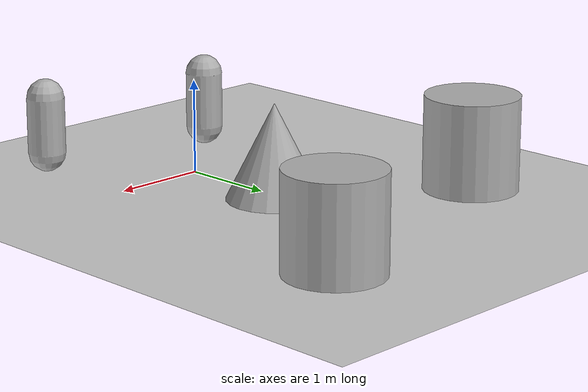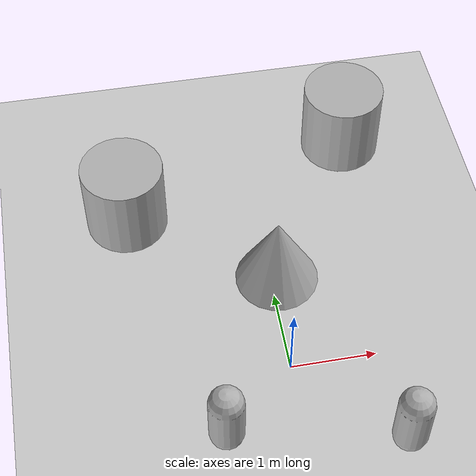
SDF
<sdf version='1.10'>
  <world name='empty'>
    <physics name='1ms' type='ignored'>
      <max_step_size>0.001</max_step_size>
      <real_time_factor>1</real_time_factor>
      <real_time_update_rate>1000</real_time_update_rate>
    </physics>
    <plugin
      filename="gz-sim-physics-system"
      name="gz::sim::systems::Physics">
    </plugin>
    <plugin
      filename="gz-sim-user-commands-system"
      name="gz::sim::systems::UserCommands">
    </plugin>
    <plugin
      filename="gz-sim-scene-broadcaster-system"
      name="gz::sim::systems::SceneBroadcaster">
    </plugin>
    <plugin
      filename="gz-sim-sensors-system"
      name="gz::sim::systems::Sensors">
      <render_engine>ogre2</render_engine>
    </plugin>
    <plugin
      filename="gz-sim-contact-system"
      name="gz::sim::systems::Contact">
    </plugin>
    <gravity>0 0 -9.8000000000000007</gravity>
    <magnetic_field>5.5644999999999998e-06 2.2875799999999999e-05 -4.2388400000000002e-05</magnetic_field>
    <atmosphere type='adiabatic'/>
    <scene>
      <ambient>0.400000006 0.400000006 0.400000006 1</ambient>
      <background>0.699999988 0.699999988 0.699999988 1</background>
      <shadows>true</shadows>
    </scene>
    <model name='ground_plane'>
      <static>true</static>
      <link name='link'>
        <collision name='collision'>
          <geometry>
            <plane>
              <normal>0 0 1</normal>
              <size>100 100</size>
            </plane>
          </geometry>
          <surface>
            <friction>
              <ode/>
            </friction>
            <bounce/>
            <contact/>
          </surface>
        </collision>
        <visual name='visual'>
          <geometry>
            <plane>
              <normal>0 0 1</normal>
              <size>100 100</size>
            </plane>
          </geometry>
          <material>
            <ambient>0.800000012 0.800000012 0.800000012 1</ambient>
            <diffuse>0.800000012 0.800000012 0.800000012 1</diffuse>
            <specular>0.800000012 0.800000012 0.800000012 1</specular>
          </material>
        </visual>
        <pose>0 0 0 0 0 0</pose>
        <inertial>
          <pose>0 0 0 0 0 0</pose>
          <mass>1</mass>
          <inertia>
            <ixx>1</ixx>
            <ixy>0</ixy>
            <ixz>0</ixz>
            <iyy>1</iyy>
            <iyz>0</iyz>
            <izz>1</izz>
          </inertia>
        </inertial>
        <enable_wind>false</enable_wind>
      </link>
      <pose>0 0 0 0 0 0</pose>
      <self_collide>false</self_collide>
    </model>
    <model name='cone'>
      <pose>0.083638254470768073 1.2736094310137573 0.49999999993296756 5.2544475711148228e-17 -7.713284103730715e-10 -2.7496961812708449e-22</pose>
      <link name='cone_link'>
        <inertial>
          <inertia>
            <ixx>0.074999999999999997</ixx>
            <ixy>0</ixy>
            <ixz>0</ixz>
            <iyy>0.074999999999999997</iyy>
            <iyz>0</iyz>
            <izz>0.074999999999999997</izz>
          </inertia>
          <mass>1</mass>
          <pose>0 0 0 0 0 0</pose>
        </inertial>
        <collision name='cone_collision'>
          <geometry>
            <cone>
              <radius>0.5</radius>
              <length>1</length>
            </cone>
          </geometry>
          <surface>
            <friction>
              <ode/>
            </friction>
            <bounce/>
            <contact/>
          </surface>
        </collision>
        <visual name='cone_visual'>
          <geometry>
            <cone>
              <radius>0.5</radius>
              <length>1</length>
            </cone>
          </geometry>
          <material>
            <ambient>0.300000012 0.300000012 0.300000012 1</ambient>
            <diffuse>0.699999988 0.699999988 0.699999988 1</diffuse>
            <specular>1 1 1 1</specular>
          </material>
        </visual>
        <pose>0 0 0 0 0 0</pose>
        <enable_wind>false</enable_wind>
      </link>
      <static>false</static>
      <self_collide>false</self_collide>
    </model>
    <model name='capsule'>
      <pose>1.0703586754875873 -1.150531705717136 0.499999999902001 0 0 0</pose>
      <link name='capsule_link'>
        <inertial>
          <inertia>
            <ixx>0.074153999999999998</ixx>
            <ixy>0</ixy>
            <ixz>0</ixz>
            <iyy>0.074153999999999998</iyy>
            <iyz>0</iyz>
            <izz>0.018769000000000001</izz>
          </inertia>
          <mass>1</mass>
          <pose>0 0 0 0 0 0</pose>
        </inertial>
        <collision name='capsule_collision'>
          <geometry>
            <capsule>
              <radius>0.20000000000000001</radius>
              <length>0.59999999999999998</length>
            </capsule>
          </geometry>
          <surface>
            <friction>
              <ode/>
            </friction>
            <bounce/>
            <contact/>
          </surface>
        </collision>
        <visual name='capsule_visual'>
          <geometry>
            <capsule>
              <radius>0.20000000000000001</radius>
              <length>0.59999999999999998</length>
            </capsule>
          </geometry>
          <material>
            <ambient>0.300000012 0.300000012 0.300000012 1</ambient>
            <diffuse>0.699999988 0.699999988 0.699999988 1</diffuse>
            <specular>1 1 1 1</specular>
          </material>
        </visual>
        <pose>0 0 0 0 0 0</pose>
        <enable_wind>false</enable_wind>
      </link>
      <static>false</static>
      <self_collide>false</self_collide>
    </model>
    <model name='capsule_0'>
      <pose>-0.87194488257827141 -0.78766852287017253 0.499999999902001 0 0 0</pose>
      <link name='capsule_link'>
        <inertial>
          <inertia>
            <ixx>0.074153999999999998</ixx>
            <ixy>0</ixy>
            <ixz>0</ixz>
            <iyy>0.074153999999999998</iyy>
            <iyz>0</iyz>
            <izz>0.018769000000000001</izz>
          </inertia>
          <mass>1</mass>
          <pose>0 0 0 0 0 0</pose>
        </inertial>
        <collision name='capsule_collision'>
          <geometry>
            <capsule>
              <radius>0.20000000000000001</radius>
              <length>0.59999999999999998</length>
            </capsule>
          </geometry>
          <surface>
            <friction>
              <ode/>
            </friction>
            <bounce/>
            <contact/>
          </surface>
        </collision>
        <visual name='capsule_visual'>
          <geometry>
            <capsule>
              <radius>0.20000000000000001</radius>
              <length>0.59999999999999998</length>
            </capsule>
          </geometry>
          <material>
            <ambient>0.300000012 0.300000012 0.300000012 1</ambient>
            <diffuse>0.699999988 0.699999988 0.699999988 1</diffuse>
            <specular>1 1 1 1</specular>
          </material>
        </visual>
        <pose>0 0 0 0 0 0</pose>
        <enable_wind>false</enable_wind>
      </link>
      <static>false</static>
      <self_collide>false</self_collide>
    </model>
    <model name='cylinder'>
      <pose>1.3220617624472881 3.2821432825383621 0.49999942638036005 -1.186114075997316e-19 2.1432219964744597e-19 -2.98540744787039e-20</pose>
      <link name='cylinder_link'>
        <inertial>
          <inertia>
            <ixx>0.14580000000000001</ixx>
            <ixy>0</ixy>
            <ixz>0</ixz>
            <iyy>0.14580000000000001</iyy>
            <iyz>0</iyz>
            <izz>0.125</izz>
          </inertia>
          <mass>1</mass>
          <pose>0 0 0 0 0 0</pose>
        </inertial>
        <collision name='cylinder_collision'>
          <geometry>
            <cylinder>
              <radius>0.5</radius>
              <length>1</length>
            </cylinder>
          </geometry>
          <surface>
            <friction>
              <ode/>
            </friction>
            <bounce/>
            <contact/>
          </surface>
        </collision>
        <visual name='cylinder_visual'>
          <geometry>
            <cylinder>
              <radius>0.5</radius>
              <length>1</length>
            </cylinder>
          </geometry>
          <material>
            <ambient>0.300000012 0.300000012 0.300000012 1</ambient>
            <diffuse>0.699999988 0.699999988 0.699999988 1</diffuse>
            <specular>1 1 1 1</specular>
          </material>
        </visual>
        <pose>0 0 0 0 0 0</pose>
        <enable_wind>false</enable_wind>
      </link>
      <static>false</static>
      <self_collide>false</self_collide>
    </model>
    <model name='cylinder_0'>
      <pose>-1.5997295651361576 2.4494149038386226 0.49999942638036005 1.1680526839048571e-19 1.238561190321876e-19 -1.1199325942808092e-20</pose>
      <link name='cylinder_link'>
        <inertial>
          <inertia>
            <ixx>0.14580000000000001</ixx>
            <ixy>0</ixy>
            <ixz>0</ixz>
            <iyy>0.14580000000000001</iyy>
            <iyz>0</iyz>
            <izz>0.125</izz>
          </inertia>
          <mass>1</mass>
          <pose>0 0 0 0 0 0</pose>
        </inertial>
        <collision name='cylinder_collision'>
          <geometry>
            <cylinder>
              <radius>0.5</radius>
              <length>1</length>
            </cylinder>
          </geometry>
          <surface>
            <friction>
              <ode/>
            </friction>
            <bounce/>
            <contact/>
          </surface>
        </collision>
        <visual name='cylinder_visual'>
          <geometry>
            <cylinder>
              <radius>0.5</radius>
              <length>1</length>
            </cylinder>
          </geometry>
          <material>
            <ambient>0.300000012 0.300000012 0.300000012 1</ambient>
            <diffuse>0.699999988 0.699999988 0.699999988 1</diffuse>
            <specular>1 1 1 1</specular>
          </material>
        </visual>
        <pose>0 0 0 0 0 0</pose>
        <enable_wind>false</enable_wind>
      </link>
      <static>false</static>
      <self_collide>false</self_collide>
    </model>
    <light name='sun' type='directional'>
      <pose>0 0 10 0 0 0</pose>
      <cast_shadows>true</cast_shadows>
      <intensity>1</intensity>
      <direction>-0.5 0.10000000000000001 -0.90000000000000002</direction>
      <diffuse>0.800000012 0.800000012 0.800000012 1</diffuse>
      <specular>0.200000003 0.200000003 0.200000003 1</specular>
      <attenuation>
        <range>1000</range>
        <linear>0.01</linear>
        <constant>0.90000000000000002</constant>
        <quadratic>0.001</quadratic>
      </attenuation>
      <spot>
        <inner_angle>0</inner_angle>
        <outer_angle>0</outer_angle>
        <falloff>0</falloff>
      </spot>
    </light>
  </world>
</sdf>
